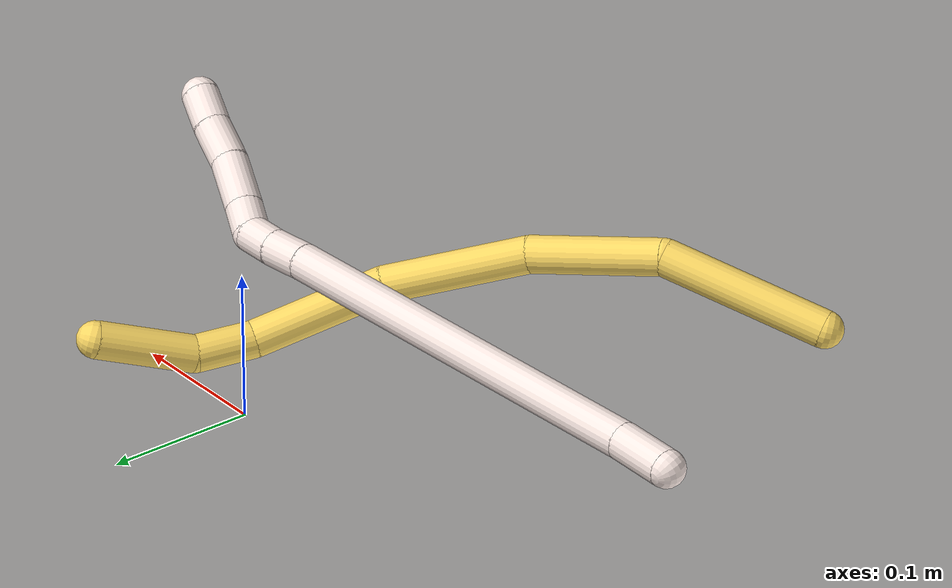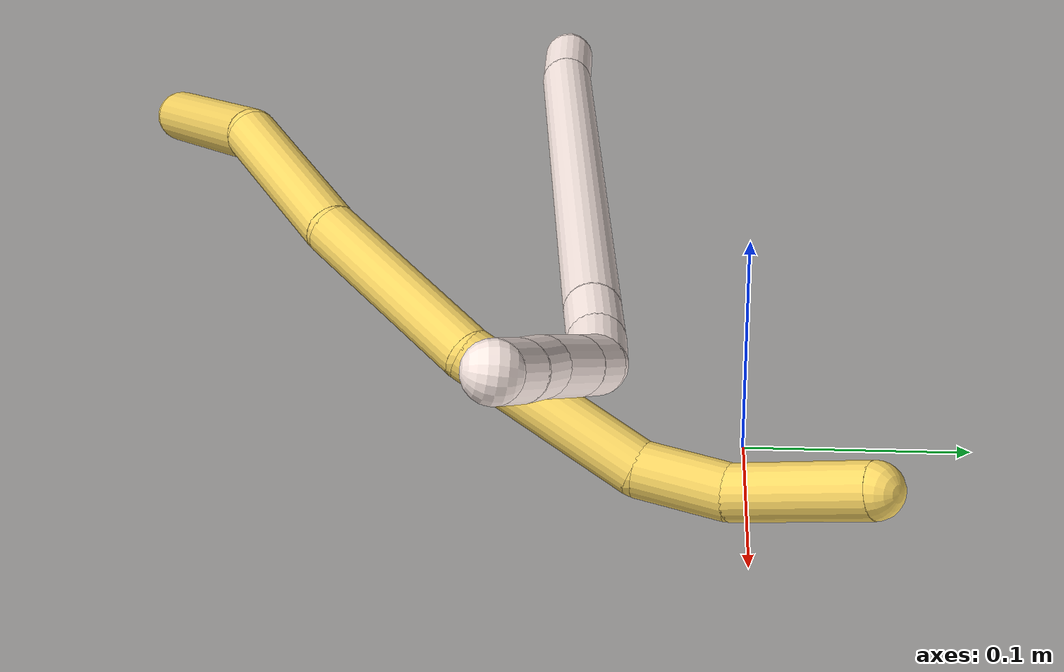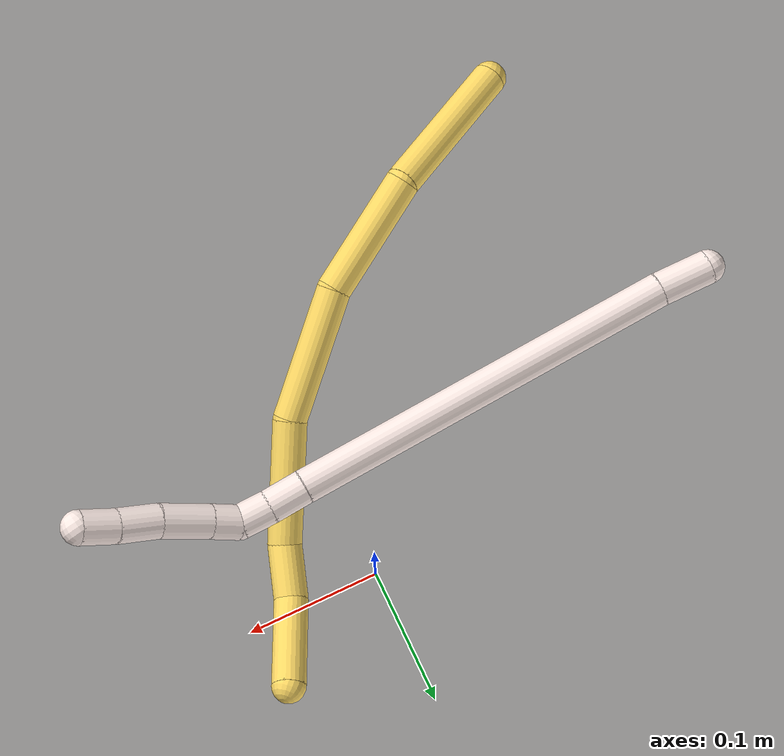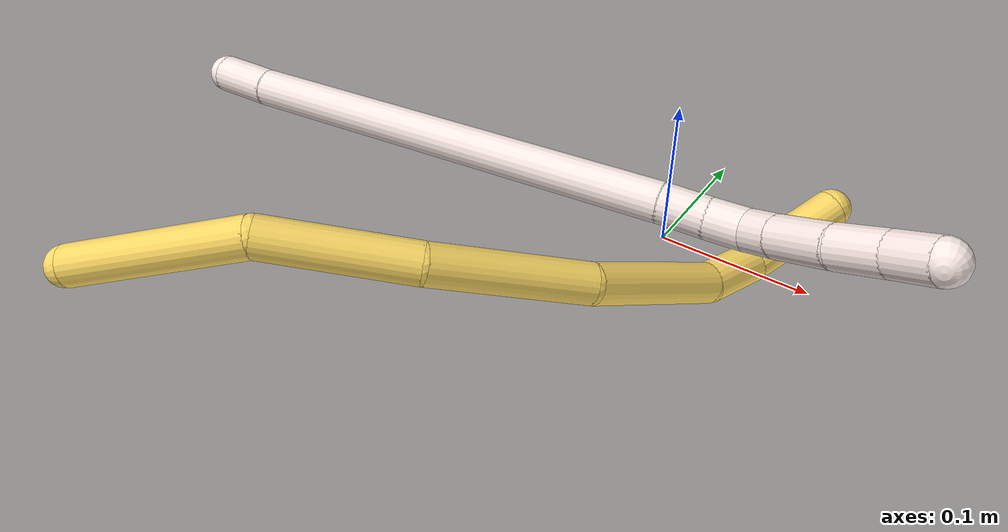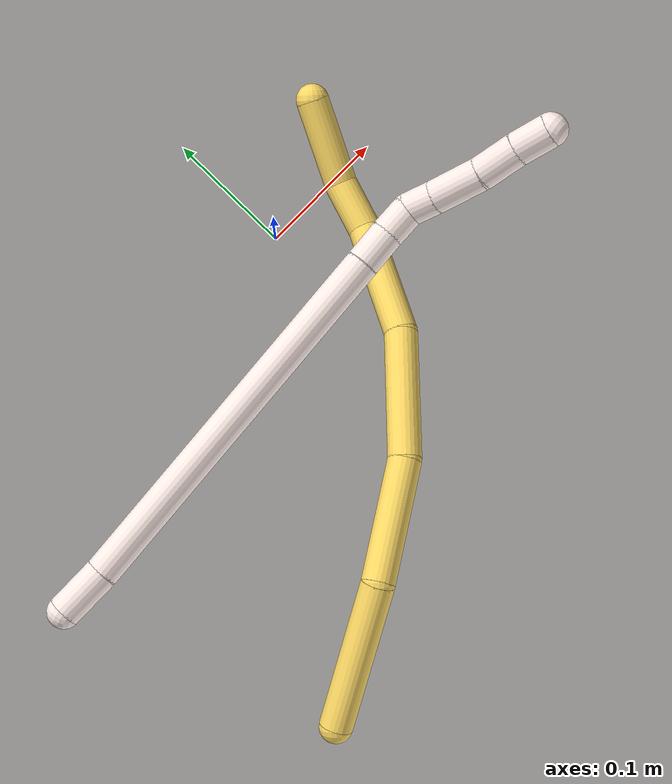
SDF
<sdf version="1.7">
 <world name="default">
  <model name="5">
   <static>0</static>
   <link name="5">
    <collision name="collision-cylinder-e_1_1_4">
     <pose>-0.01589 -0.006787 -0.05347 3.01534 -0.286683 -2.31601</pose>
     <geometry><cylinder><radius>0.0125</radius><length>0.112386</length></cylinder></geometry>
     <surface>
      <friction><ode><mu>1.16</mu><mu2>1.16</mu2><slip1>0</slip1><slip2>0</slip2></ode></friction>
      <contact><ode><kp>1e+06</kp><kd>1</kd><max_vel>0</max_vel><min_depth>0.001</min_depth></ode></contact>
     </surface>
    </collision>
    <visual name="visual-cylinder-e_1_1_4">
     <pose>-0.01589 -0.006787 -0.05347 3.01534 -0.286683 -2.31601</pose>
     <geometry><cylinder><radius>0.0125</radius><length>0.112386</length></cylinder></geometry>
     <material><ambient>1 0.858824 0.4 1</ambient></material>
    </visual>
    <collision name="collision-cylinder-e_2_4_5">
     <pose>-0.049181 -0.000712 -0.147144 -2.83196 -0.391028 1.80679</pose>
     <geometry><cylinder><radius>0.0125</radius><length>0.091313</length></cylinder></geometry>
     <surface>
      <friction><ode><mu>1.16</mu><mu2>1.16</mu2><slip1>0</slip1><slip2>0</slip2></ode></friction>
      <contact><ode><kp>1e+06</kp><kd>1</kd><max_vel>0</max_vel><min_depth>0.001</min_depth></ode></contact>
     </surface>
    </collision>
    <visual name="visual-cylinder-e_2_4_5">
     <pose>-0.049181 -0.000712 -0.147144 -2.83196 -0.391028 1.80679</pose>
     <geometry><cylinder><radius>0.0125</radius><length>0.091313</length></cylinder></geometry>
     <material><ambient>1 0.858824 0.4 1</ambient></material>
    </visual>
    <collision name="collision-cylinder-e_3_5_6">
     <pose>-0.076747 0.035395 -0.229411 -2.63676 -0.208432 0.770538</pose>
     <geometry><cylinder><radius>0.0125</radius><length>0.098245</length></cylinder></geometry>
     <surface>
      <friction><ode><mu>1.16</mu><mu2>1.16</mu2><slip1>0</slip1><slip2>0</slip2></ode></friction>
      <contact><ode><kp>1e+06</kp><kd>1</kd><max_vel>0</max_vel><min_depth>0.001</min_depth></ode></contact>
     </surface>
    </collision>
    <visual name="visual-cylinder-e_3_5_6">
     <pose>-0.076747 0.035395 -0.229411 -2.63676 -0.208432 0.770538</pose>
     <geometry><cylinder><radius>0.0125</radius><length>0.098245</length></cylinder></geometry>
     <material><ambient>1 0.858824 0.4 1</ambient></material>
    </visual>
    <collision name="collision-cylinder-e_4_6_7">
     <pose>-0.085456 0.086515 -0.307477 -2.48271 0.031976 -0.093464</pose>
     <geometry><cylinder><radius>0.0125</radius><length>0.091111</length></cylinder></geometry>
     <surface>
      <friction><ode><mu>1.16</mu><mu2>1.16</mu2><slip1>0</slip1><slip2>0</slip2></ode></friction>
      <contact><ode><kp>1e+06</kp><kd>1</kd><max_vel>0</max_vel><min_depth>0.001</min_depth></ode></contact>
     </surface>
    </collision>
    <visual name="visual-cylinder-e_4_6_7">
     <pose>-0.085456 0.086515 -0.307477 -2.48271 0.031976 -0.093464</pose>
     <geometry><cylinder><radius>0.0125</radius><length>0.091111</length></cylinder></geometry>
     <material><ambient>1 0.858824 0.4 1</ambient></material>
    </visual>
    <collision name="collision-cylinder-e_5_7_8">
     <pose>-0.07822 0.122898 -0.36089 -2.68714 0.289829 -1.12604</pose>
     <geometry><cylinder><radius>0.0125</radius><length>0.040444</length></cylinder></geometry>
     <surface>
      <friction><ode><mu>1.16</mu><mu2>1.16</mu2><slip1>0</slip1><slip2>0</slip2></ode></friction>
      <contact><ode><kp>1e+06</kp><kd>1</kd><max_vel>0</max_vel><min_depth>0.001</min_depth></ode></contact>
     </surface>
    </collision>
    <visual name="visual-cylinder-e_5_7_8">
     <pose>-0.07822 0.122898 -0.36089 -2.68714 0.289829 -1.12604</pose>
     <geometry><cylinder><radius>0.0125</radius><length>0.040444</length></cylinder></geometry>
     <material><ambient>1 0.858824 0.4 1</ambient></material>
    </visual>
    <collision name="collision-cylinder-e_6_8_2">
     <pose>-0.063186 0.133194 -0.410188 -3.08555 0.282055 -2.75178</pose>
     <geometry><cylinder><radius>0.0125</radius><length>0.0665</length></cylinder></geometry>
     <surface>
      <friction><ode><mu>1.16</mu><mu2>1.16</mu2><slip1>0</slip1><slip2>0</slip2></ode></friction>
      <contact><ode><kp>1e+06</kp><kd>1</kd><max_vel>0</max_vel><min_depth>0.001</min_depth></ode></contact>
     </surface>
    </collision>
    <visual name="visual-cylinder-e_6_8_2">
     <pose>-0.063186 0.133194 -0.410188 -3.08555 0.282055 -2.75178</pose>
     <geometry><cylinder><radius>0.0125</radius><length>0.0665</length></cylinder></geometry>
     <material><ambient>1 0.858824 0.4 1</ambient></material>
    </visual>
    <collision name="collision-sphere-2">
     <pose>-0.053932 0.134982 -0.442075 0 -0 0</pose>
     <geometry><sphere><radius>0.0125</radius></sphere></geometry>
     <surface>
      <friction><ode><mu>1.16</mu><mu2>1.16</mu2><slip1>0</slip1><slip2>0</slip2></ode></friction>
      <contact><ode><kp>1e+06</kp><kd>1</kd><max_vel>0</max_vel><min_depth>0.001</min_depth></ode></contact>
     </surface>
    </collision>
    <visual name="visual-sphere-2">
     <pose>-0.053932 0.134982 -0.442075 0 -0 0</pose>
     <geometry><sphere><radius>0.0125</radius></sphere></geometry>
     <material><ambient>1 0.858824 0.4 1</ambient></material>
    </visual>
    <collision name="collision-sphere-4">
     <pose>-0.03178 -0.013574 -0.106941 0 -0 0</pose>
     <geometry><sphere><radius>0.0125</radius></sphere></geometry>
     <surface>
      <friction><ode><mu>1.16</mu><mu2>1.16</mu2><slip1>0</slip1><slip2>0</slip2></ode></friction>
      <contact><ode><kp>1e+06</kp><kd>1</kd><max_vel>0</max_vel><min_depth>0.001</min_depth></ode></contact>
     </surface>
    </collision>
    <visual name="visual-sphere-4">
     <pose>-0.03178 -0.013574 -0.106941 0 -0 0</pose>
     <geometry><sphere><radius>0.0125</radius></sphere></geometry>
     <material><ambient>1 0.858824 0.4 1</ambient></material>
    </visual>
    <collision name="collision-sphere-1">
     <geometry><sphere><radius>0.0125</radius></sphere></geometry>
     <surface>
      <friction><ode><mu>1.16</mu><mu2>1.16</mu2><slip1>0</slip1><slip2>0</slip2></ode></friction>
      <contact><ode><kp>1e+06</kp><kd>1</kd><max_vel>0</max_vel><min_depth>0.001</min_depth></ode></contact>
     </surface>
    </collision>
    <visual name="visual-sphere-1">
     <geometry><sphere><radius>0.0125</radius></sphere></geometry>
     <material><ambient>1 0.858824 0.4 1</ambient></material>
    </visual>
    <collision name="collision-sphere-8">
     <pose>-0.072441 0.131405 -0.378302 0 -0 0</pose>
     <geometry><sphere><radius>0.0125</radius></sphere></geometry>
     <surface>
      <friction><ode><mu>1.16</mu><mu2>1.16</mu2><slip1>0</slip1><slip2>0</slip2></ode></friction>
      <contact><ode><kp>1e+06</kp><kd>1</kd><max_vel>0</max_vel><min_depth>0.001</min_depth></ode></contact>
     </surface>
    </collision>
    <visual name="visual-sphere-8">
     <pose>-0.072441 0.131405 -0.378302 0 -0 0</pose>
     <geometry><sphere><radius>0.0125</radius></sphere></geometry>
     <material><ambient>1 0.858824 0.4 1</ambient></material>
    </visual>
    <collision name="collision-sphere-5">
     <pose>-0.066583 0.01215 -0.187347 0 -0 0</pose>
     <geometry><sphere><radius>0.0125</radius></sphere></geometry>
     <surface>
      <friction><ode><mu>1.16</mu><mu2>1.16</mu2><slip1>0</slip1><slip2>0</slip2></ode></friction>
      <contact><ode><kp>1e+06</kp><kd>1</kd><max_vel>0</max_vel><min_depth>0.001</min_depth></ode></contact>
     </surface>
    </collision>
    <visual name="visual-sphere-5">
     <pose>-0.066583 0.01215 -0.187347 0 -0 0</pose>
     <geometry><sphere><radius>0.0125</radius></sphere></geometry>
     <material><ambient>1 0.858824 0.4 1</ambient></material>
    </visual>
    <collision name="collision-sphere-6">
     <pose>-0.086912 0.058639 -0.271476 0 -0 0</pose>
     <geometry><sphere><radius>0.0125</radius></sphere></geometry>
     <surface>
      <friction><ode><mu>1.16</mu><mu2>1.16</mu2><slip1>0</slip1><slip2>0</slip2></ode></friction>
      <contact><ode><kp>1e+06</kp><kd>1</kd><max_vel>0</max_vel><min_depth>0.001</min_depth></ode></contact>
     </surface>
    </collision>
    <visual name="visual-sphere-6">
     <pose>-0.086912 0.058639 -0.271476 0 -0 0</pose>
     <geometry><sphere><radius>0.0125</radius></sphere></geometry>
     <material><ambient>1 0.858824 0.4 1</ambient></material>
    </visual>
    <collision name="collision-sphere-7">
     <pose>-0.083999 0.114392 -0.343479 0 -0 0</pose>
     <geometry><sphere><radius>0.0125</radius></sphere></geometry>
     <surface>
      <friction><ode><mu>1.16</mu><mu2>1.16</mu2><slip1>0</slip1><slip2>0</slip2></ode></friction>
      <contact><ode><kp>1e+06</kp><kd>1</kd><max_vel>0</max_vel><min_depth>0.001</min_depth></ode></contact>
     </surface>
    </collision>
    <visual name="visual-sphere-7">
     <pose>-0.083999 0.114392 -0.343479 0 -0 0</pose>
     <geometry><sphere><radius>0.0125</radius></sphere></geometry>
     <material><ambient>1 0.858824 0.4 1</ambient></material>
    </visual>
    <inertial>
     <pose>-0.057936 0.04872 -0.223745 0 -0 0</pose>
     <mass>0.5</mass>
     <inertia><ixx>1.3e-05</ixx><ixy>0</ixy><ixz>0</ixz><iyy>5.1e-05</iyy><iyz>0</iyz><izz>-5.7e-05</izz></inertia>
    </inertial>
   </link>
   <pose>-0.227767 -0.287262 0.062054 -1.83846 -0.323448 2.48575</pose>
  </model>
  <model name="11">
   <static>0</static>
   <link name="11">
    <collision name="collision-cylinder-e_1_1_4">
     <pose>0.019512 0.000761 -0.003108 -2.90159 1.40826 -2.85954</pose>
     <geometry><cylinder><radius>0.0125</radius><length>0.039545</length></cylinder></geometry>
     <surface>
      <friction><ode><mu>1.16</mu><mu2>1.16</mu2><slip1>0</slip1><slip2>0</slip2></ode></friction>
      <contact><ode><kp>1e+06</kp><kd>1</kd><max_vel>0</max_vel><min_depth>0.001</min_depth></ode></contact>
     </surface>
    </collision>
    <visual name="visual-cylinder-e_1_1_4">
     <pose>0.019512 0.000761 -0.003108 -2.90159 1.40826 -2.85954</pose>
     <geometry><cylinder><radius>0.0125</radius><length>0.039545</length></cylinder></geometry>
     <material><ambient>1 0.933333 0.909804 1</ambient></material>
    </visual>
    <collision name="collision-cylinder-e_2_4_5">
     <pose>0.183984 0.005555 -0.019362 -2.84386 1.47622 -2.81478</pose>
     <geometry><cylinder><radius>0.0125</radius><length>0.291221</length></cylinder></geometry>
     <surface>
      <friction><ode><mu>1.16</mu><mu2>1.16</mu2><slip1>0</slip1><slip2>0</slip2></ode></friction>
      <contact><ode><kp>1e+06</kp><kd>1</kd><max_vel>0</max_vel><min_depth>0.001</min_depth></ode></contact>
     </surface>
    </collision>
    <visual name="visual-cylinder-e_2_4_5">
     <pose>0.183984 0.005555 -0.019362 -2.84386 1.47622 -2.81478</pose>
     <geometry><cylinder><radius>0.0125</radius><length>0.291221</length></cylinder></geometry>
     <material><ambient>1 0.933333 0.909804 1</ambient></material>
    </visual>
    <collision name="collision-cylinder-e_3_5_6">
     <pose>0.342845 0.010588 -0.033513 -2.35945 1.46918 -2.28512</pose>
     <geometry><cylinder><radius>0.0125</radius><length>0.027948</length></cylinder></geometry>
     <surface>
      <friction><ode><mu>1.16</mu><mu2>1.16</mu2><slip1>0</slip1><slip2>0</slip2></ode></friction>
      <contact><ode><kp>1e+06</kp><kd>1</kd><max_vel>0</max_vel><min_depth>0.001</min_depth></ode></contact>
     </surface>
    </collision>
    <visual name="visual-cylinder-e_3_5_6">
     <pose>0.342845 0.010588 -0.033513 -2.35945 1.46918 -2.28512</pose>
     <geometry><cylinder><radius>0.0125</radius><length>0.027948</length></cylinder></geometry>
     <material><ambient>1 0.933333 0.909804 1</ambient></material>
    </visual>
    <collision name="collision-cylinder-e_4_6_7">
     <pose>0.368462 0.011823 -0.035969 -2.98059 1.44605 -2.95925</pose>
     <geometry><cylinder><radius>0.0125</radius><length>0.023613</length></cylinder></geometry>
     <surface>
      <friction><ode><mu>1.16</mu><mu2>1.16</mu2><slip1>0</slip1><slip2>0</slip2></ode></friction>
      <contact><ode><kp>1e+06</kp><kd>1</kd><max_vel>0</max_vel><min_depth>0.001</min_depth></ode></contact>
     </surface>
    </collision>
    <visual name="visual-cylinder-e_4_6_7">
     <pose>0.368462 0.011823 -0.035969 -2.98059 1.44605 -2.95925</pose>
     <geometry><cylinder><radius>0.0125</radius><length>0.023613</length></cylinder></geometry>
     <material><ambient>1 0.933333 0.909804 1</ambient></material>
    </visual>
    <collision name="collision-cylinder-e_5_7_8">
     <pose>0.388674 0.009085 -0.043469 2.68486 0.900108 2.2448</pose>
     <geometry><cylinder><radius>0.0125</radius><length>0.021695</length></cylinder></geometry>
     <surface>
      <friction><ode><mu>1.16</mu><mu2>1.16</mu2><slip1>0</slip1><slip2>0</slip2></ode></friction>
      <contact><ode><kp>1e+06</kp><kd>1</kd><max_vel>0</max_vel><min_depth>0.001</min_depth></ode></contact>
     </surface>
    </collision>
    <visual name="visual-cylinder-e_5_7_8">
     <pose>0.388674 0.009085 -0.043469 2.68486 0.900108 2.2448</pose>
     <geometry><cylinder><radius>0.0125</radius><length>0.021695</length></cylinder></geometry>
     <material><ambient>1 0.933333 0.909804 1</ambient></material>
    </visual>
    <collision name="collision-cylinder-e_6_8_9">
     <pose>0.412119 0.000453 -0.059578 2.62917 0.913322 2.16186</pose>
     <geometry><cylinder><radius>0.0125</radius><length>0.037767</length></cylinder></geometry>
     <surface>
      <friction><ode><mu>1.16</mu><mu2>1.16</mu2><slip1>0</slip1><slip2>0</slip2></ode></friction>
      <contact><ode><kp>1e+06</kp><kd>1</kd><max_vel>0</max_vel><min_depth>0.001</min_depth></ode></contact>
     </surface>
    </collision>
    <visual name="visual-cylinder-e_6_8_9">
     <pose>0.412119 0.000453 -0.059578 2.62917 0.913322 2.16186</pose>
     <geometry><cylinder><radius>0.0125</radius><length>0.037767</length></cylinder></geometry>
     <material><ambient>1 0.933333 0.909804 1</ambient></material>
    </visual>
    <collision name="collision-cylinder-e_7_9_10">
     <pose>0.440347 -0.009781 -0.076266 2.53743 1.02557 2.13057</pose>
     <geometry><cylinder><radius>0.0125</radius><length>0.031067</length></cylinder></geometry>
     <surface>
      <friction><ode><mu>1.16</mu><mu2>1.16</mu2><slip1>0</slip1><slip2>0</slip2></ode></friction>
      <contact><ode><kp>1e+06</kp><kd>1</kd><max_vel>0</max_vel><min_depth>0.001</min_depth></ode></contact>
     </surface>
    </collision>
    <visual name="visual-cylinder-e_7_9_10">
     <pose>0.440347 -0.009781 -0.076266 2.53743 1.02557 2.13057</pose>
     <geometry><cylinder><radius>0.0125</radius><length>0.031067</length></cylinder></geometry>
     <material><ambient>1 0.933333 0.909804 1</ambient></material>
    </visual>
    <collision name="collision-cylinder-e_8_10_2">
     <pose>0.464666 -0.018546 -0.089591 2.58256 0.949725 2.12317</pose>
     <geometry><cylinder><radius>0.0125</radius><length>0.027145</length></cylinder></geometry>
     <surface>
      <friction><ode><mu>1.16</mu><mu2>1.16</mu2><slip1>0</slip1><slip2>0</slip2></ode></friction>
      <contact><ode><kp>1e+06</kp><kd>1</kd><max_vel>0</max_vel><min_depth>0.001</min_depth></ode></contact>
     </surface>
    </collision>
    <visual name="visual-cylinder-e_8_10_2">
     <pose>0.464666 -0.018546 -0.089591 2.58256 0.949725 2.12317</pose>
     <geometry><cylinder><radius>0.0125</radius><length>0.027145</length></cylinder></geometry>
     <material><ambient>1 0.933333 0.909804 1</ambient></material>
    </visual>
    <collision name="collision-sphere-2">
     <pose>0.475704 -0.022735 -0.096287 0 -0 0</pose>
     <geometry><sphere><radius>0.0125</radius></sphere></geometry>
     <surface>
      <friction><ode><mu>1.16</mu><mu2>1.16</mu2><slip1>0</slip1><slip2>0</slip2></ode></friction>
      <contact><ode><kp>1e+06</kp><kd>1</kd><max_vel>0</max_vel><min_depth>0.001</min_depth></ode></contact>
     </surface>
    </collision>
    <visual name="visual-sphere-2">
     <pose>0.475704 -0.022735 -0.096287 0 -0 0</pose>
     <geometry><sphere><radius>0.0125</radius></sphere></geometry>
     <material><ambient>1 0.933333 0.909804 1</ambient></material>
    </visual>
    <collision name="collision-sphere-10">
     <pose>0.453628 -0.014357 -0.082895 0 -0 0</pose>
     <geometry><sphere><radius>0.0125</radius></sphere></geometry>
     <surface>
      <friction><ode><mu>1.16</mu><mu2>1.16</mu2><slip1>0</slip1><slip2>0</slip2></ode></friction>
      <contact><ode><kp>1e+06</kp><kd>1</kd><max_vel>0</max_vel><min_depth>0.001</min_depth></ode></contact>
     </surface>
    </collision>
    <visual name="visual-sphere-10">
     <pose>0.453628 -0.014357 -0.082895 0 -0 0</pose>
     <geometry><sphere><radius>0.0125</radius></sphere></geometry>
     <material><ambient>1 0.933333 0.909804 1</ambient></material>
    </visual>
    <collision name="collision-sphere-9">
     <pose>0.427066 -0.005205 -0.069636 0 -0 0</pose>
     <geometry><sphere><radius>0.0125</radius></sphere></geometry>
     <surface>
      <friction><ode><mu>1.16</mu><mu2>1.16</mu2><slip1>0</slip1><slip2>0</slip2></ode></friction>
      <contact><ode><kp>1e+06</kp><kd>1</kd><max_vel>0</max_vel><min_depth>0.001</min_depth></ode></contact>
     </surface>
    </collision>
    <visual name="visual-sphere-9">
     <pose>0.427066 -0.005205 -0.069636 0 -0 0</pose>
     <geometry><sphere><radius>0.0125</radius></sphere></geometry>
     <material><ambient>1 0.933333 0.909804 1</ambient></material>
    </visual>
    <collision name="collision-sphere-4">
     <pose>0.039024 0.001521 -0.006216 0 -0 0</pose>
     <geometry><sphere><radius>0.0125</radius></sphere></geometry>
     <surface>
      <friction><ode><mu>1.16</mu><mu2>1.16</mu2><slip1>0</slip1><slip2>0</slip2></ode></friction>
      <contact><ode><kp>1e+06</kp><kd>1</kd><max_vel>0</max_vel><min_depth>0.001</min_depth></ode></contact>
     </surface>
    </collision>
    <visual name="visual-sphere-4">
     <pose>0.039024 0.001521 -0.006216 0 -0 0</pose>
     <geometry><sphere><radius>0.0125</radius></sphere></geometry>
     <material><ambient>1 0.933333 0.909804 1</ambient></material>
    </visual>
    <collision name="collision-sphere-1">
     <geometry><sphere><radius>0.0125</radius></sphere></geometry>
     <surface>
      <friction><ode><mu>1.16</mu><mu2>1.16</mu2><slip1>0</slip1><slip2>0</slip2></ode></friction>
      <contact><ode><kp>1e+06</kp><kd>1</kd><max_vel>0</max_vel><min_depth>0.001</min_depth></ode></contact>
     </surface>
    </collision>
    <visual name="visual-sphere-1">
     <geometry><sphere><radius>0.0125</radius></sphere></geometry>
     <material><ambient>1 0.933333 0.909804 1</ambient></material>
    </visual>
    <collision name="collision-sphere-8">
     <pose>0.397172 0.006111 -0.04952 0 -0 0</pose>
     <geometry><sphere><radius>0.0125</radius></sphere></geometry>
     <surface>
      <friction><ode><mu>1.16</mu><mu2>1.16</mu2><slip1>0</slip1><slip2>0</slip2></ode></friction>
      <contact><ode><kp>1e+06</kp><kd>1</kd><max_vel>0</max_vel><min_depth>0.001</min_depth></ode></contact>
     </surface>
    </collision>
    <visual name="visual-sphere-8">
     <pose>0.397172 0.006111 -0.04952 0 -0 0</pose>
     <geometry><sphere><radius>0.0125</radius></sphere></geometry>
     <material><ambient>1 0.933333 0.909804 1</ambient></material>
    </visual>
    <collision name="collision-sphere-5">
     <pose>0.328943 0.009589 -0.032508 0 -0 0</pose>
     <geometry><sphere><radius>0.0125</radius></sphere></geometry>
     <surface>
      <friction><ode><mu>1.16</mu><mu2>1.16</mu2><slip1>0</slip1><slip2>0</slip2></ode></friction>
      <contact><ode><kp>1e+06</kp><kd>1</kd><max_vel>0</max_vel><min_depth>0.001</min_depth></ode></contact>
     </surface>
    </collision>
    <visual name="visual-sphere-5">
     <pose>0.328943 0.009589 -0.032508 0 -0 0</pose>
     <geometry><sphere><radius>0.0125</radius></sphere></geometry>
     <material><ambient>1 0.933333 0.909804 1</ambient></material>
    </visual>
    <collision name="collision-sphere-6">
     <pose>0.356747 0.011587 -0.034519 0 -0 0</pose>
     <geometry><sphere><radius>0.0125</radius></sphere></geometry>
     <surface>
      <friction><ode><mu>1.16</mu><mu2>1.16</mu2><slip1>0</slip1><slip2>0</slip2></ode></friction>
      <contact><ode><kp>1e+06</kp><kd>1</kd><max_vel>0</max_vel><min_depth>0.001</min_depth></ode></contact>
     </surface>
    </collision>
    <visual name="visual-sphere-6">
     <pose>0.356747 0.011587 -0.034519 0 -0 0</pose>
     <geometry><sphere><radius>0.0125</radius></sphere></geometry>
     <material><ambient>1 0.933333 0.909804 1</ambient></material>
    </visual>
    <collision name="collision-sphere-7">
     <pose>0.380176 0.012058 -0.037419 0 -0 0</pose>
     <geometry><sphere><radius>0.0125</radius></sphere></geometry>
     <surface>
      <friction><ode><mu>1.16</mu><mu2>1.16</mu2><slip1>0</slip1><slip2>0</slip2></ode></friction>
      <contact><ode><kp>1e+06</kp><kd>1</kd><max_vel>0</max_vel><min_depth>0.001</min_depth></ode></contact>
     </surface>
    </collision>
    <visual name="visual-sphere-7">
     <pose>0.380176 0.012058 -0.037419 0 -0 0</pose>
     <geometry><sphere><radius>0.0125</radius></sphere></geometry>
     <material><ambient>1 0.933333 0.909804 1</ambient></material>
    </visual>
    <inertial>
     <pose>0.245848 0.00326 -0.031084 0 -0 0</pose>
     <mass>0.5</mass>
     <inertia>
      <ixx>-0.00021</ixx>
      <ixy>0</ixy>
      <ixz>0</ixz>
      <iyy>0.002033</iyy>
      <iyz>0</iyz>
      <izz>-0.002144</izz>
     </inertia>
    </inertial>
   </link>
   <pose>-0.306277 -0.089613 0.06935 -1.75057 -0.03733 0.172083</pose>
  </model>
 </world>
</sdf>
